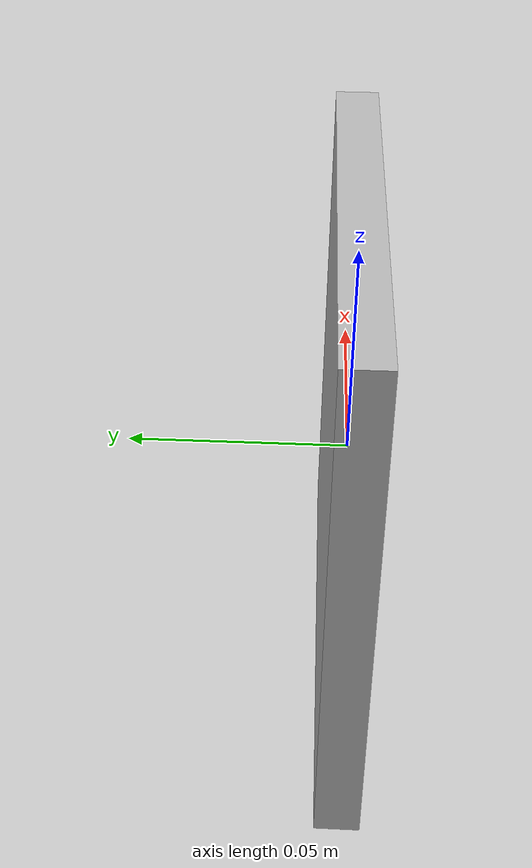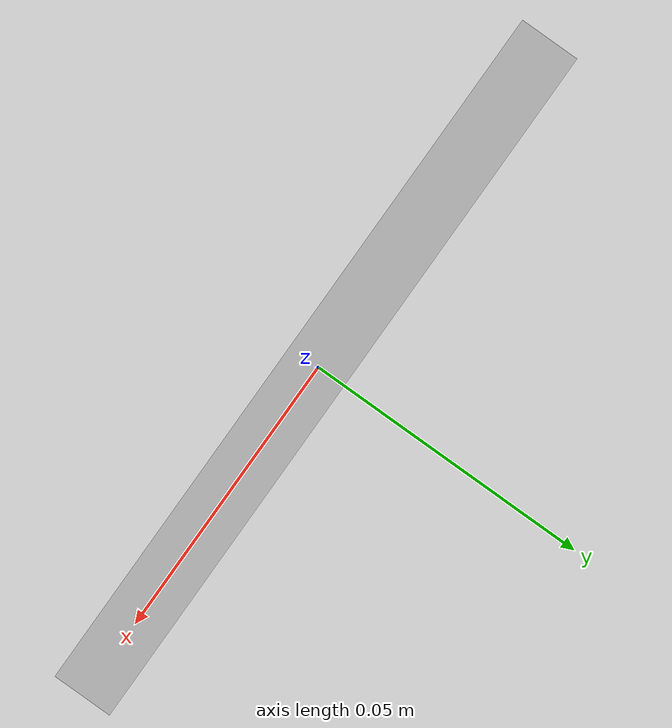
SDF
<?xml version="1.0" ?>
<sdf version="1.5">
  <model name="FINISH_qr">
    <static>true</static>
    <link name="link">
      <pose>0 0 0 0 0 0</pose>
      <collision name="collision">
        <geometry>
          <box>
            <size>0.12 0.01 0.12</size>
          </box>
        </geometry>
      </collision>
      <visual name="visual">
        <geometry>
          <box>
            <size>0.12 0.01 0.12</size>
          </box>
        </geometry>
        <material>
          <script>
            <uri>model://FINISH_qr/materials/scripts</uri>
            <uri>model://FINISH_qr/materials/textures</uri>
            <name>vrc/FINISH_qr</name>
          </script>
        </material>
      </visual>
    </link>
  </model>
</sdf>
